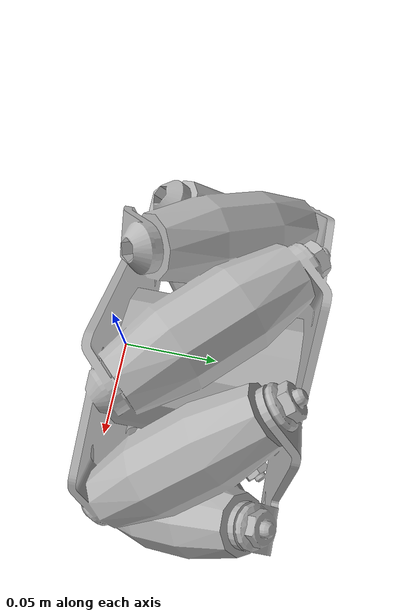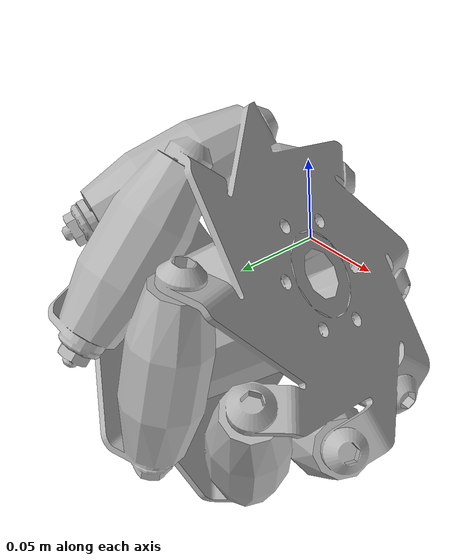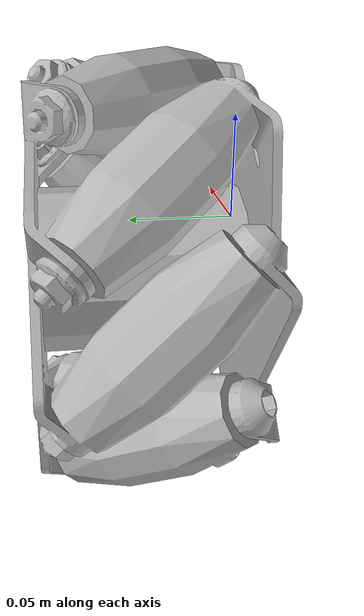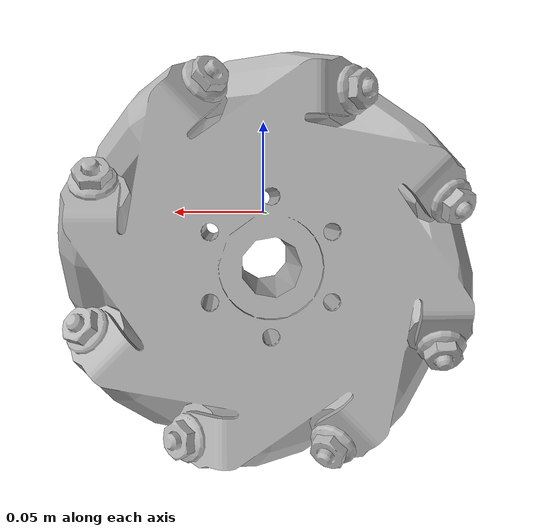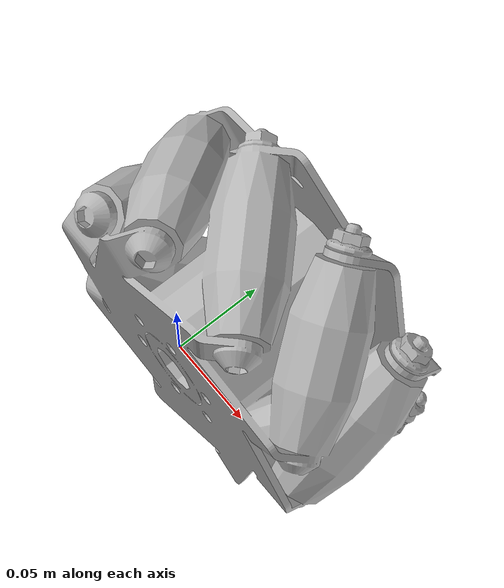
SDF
<?xml version="1.0" ?>
<sdf version="1.5">
  <model name="mecanum_wheel_right">
  	<gravity>true</gravity>
    <!-- Give the base link a unique name -->
    <pose>0 0 0 0 0 0</pose>
    <link name="base">
      <inertial>
        <mass>0.6</mass>
          <inertia>
            <ixx>0.02</ixx>
            <iyy>0.02</iyy>
            <izz>0.02</izz>
            <ixy>0.01</ixy>
            <ixz>0.01</ixz>
            <iyz>0.01</iyz>
          </inertia>
      </inertial>

      <collision name="base_collision">
        <geometry>
          <mesh>
            <uri>model://agro/models/mecanum_wheel_right/meshes/mecanum_wheel.obj</uri>
          </mesh>
        </geometry>
        <surface>
          <friction>
            <ode>
              <mu>0.00</mu>
              <mu2>0.00</mu2>
            </ode>
          </friction>
        </surface>
      </collision>

      <visual name="base_visual" type="fixed">
        <geometry>
          <mesh>
            <uri>model://agro/models/mecanum_wheel_right/meshes/mecanum_wheel.obj</uri>
          </mesh>
        </geometry>
      </visual>
    </link>
  </model>
</sdf>
